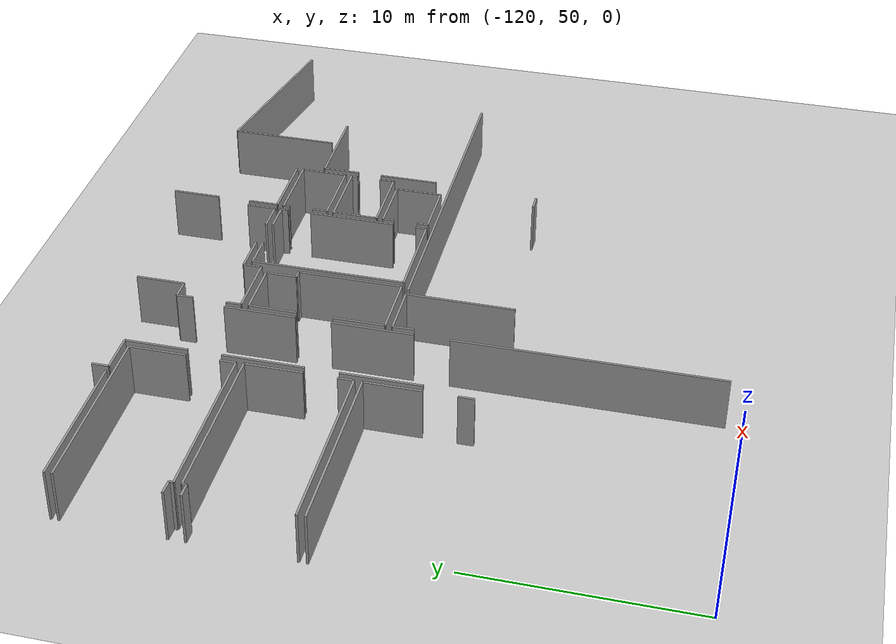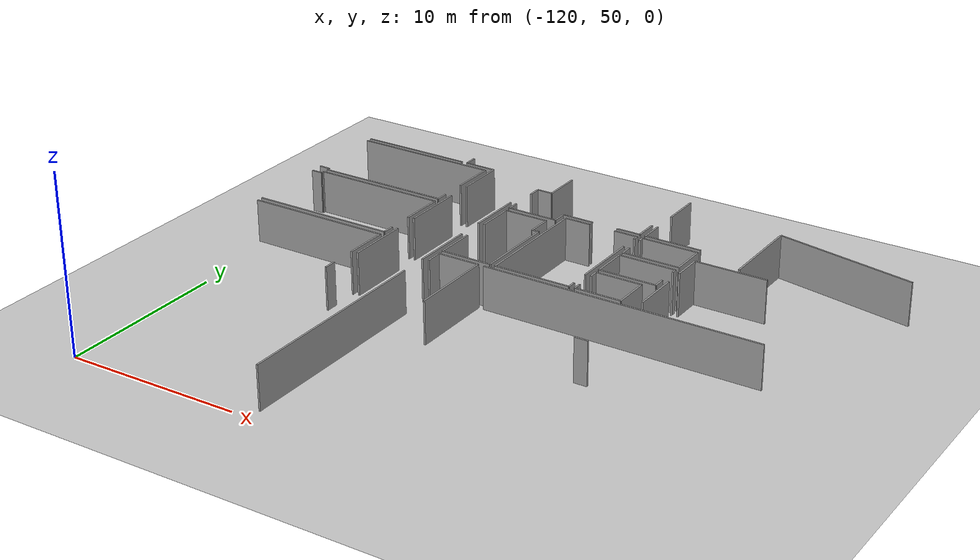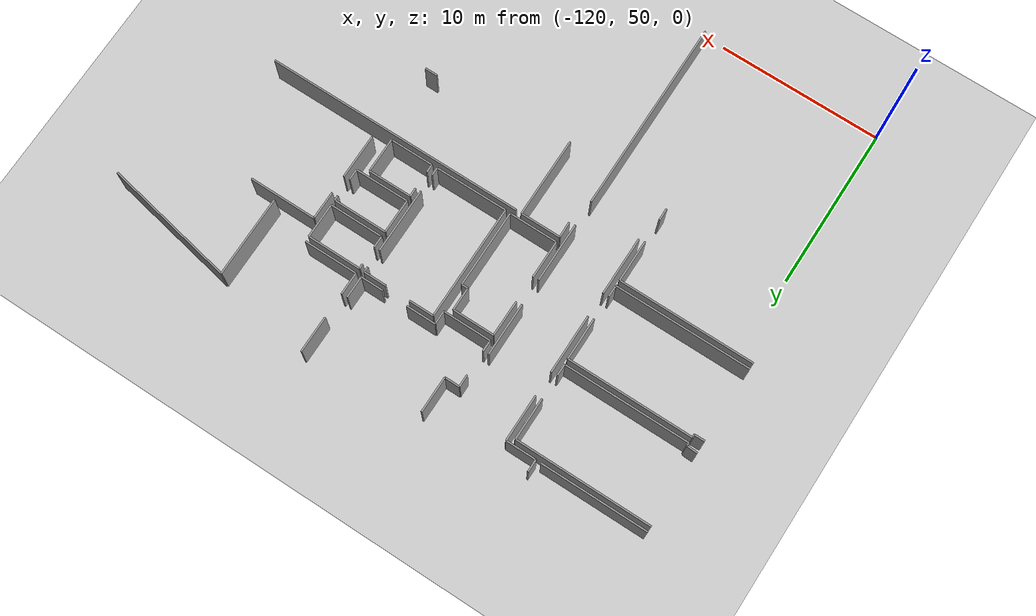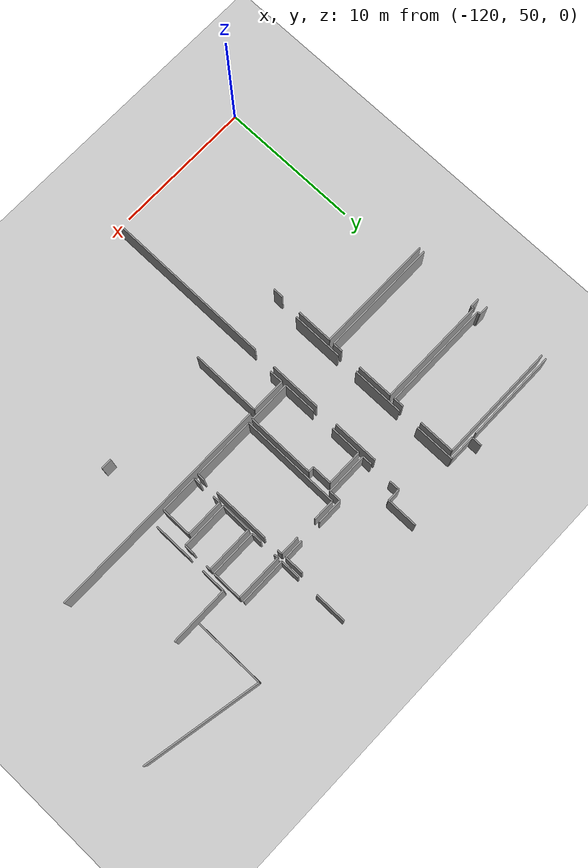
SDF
<sdf version="1.6">
 <world name="default">
  <model name="ground_plane">
   <static>1</static>
   <link name="link">
    <collision name="collision">
     <geometry><plane><normal>0 0 1</normal><size>100 100</size></plane></geometry>
     <surface><friction><ode><mu>100</mu><mu2>50</mu2></ode></friction></surface>
    </collision>
    <visual name="visual">
     <cast_shadows>0</cast_shadows>
     <geometry><plane><normal>0 0 1</normal><size>100 100</size></plane></geometry>
     <material>
      <script><uri>file://media/materials/scripts/gazebo.material</uri><name>Gazebo/Grey</name></script>
     </material>
    </visual>
   </link>
  </model>
  <model name="0510045922_A-40">
   <static>1</static>
   <link name="Wall_280">
    <collision name="Wall_280_Collision">
     <geometry><box><size>6.51966702675 0.1 2.5</size></box></geometry>
     <pose>3.25983351338 0 1.25 0 0 0</pose>
    </collision>
    <visual name="Wall_280_Visual">
     <pose>3.25983351338 0 1.25 0 0 0</pose>
     <geometry><box><size>6.51966702675 0.1 2.5</size></box></geometry>
     <material>
      <script><uri>file://media/materials/scripts/gazebo.material</uri><name>Gazebo/Grey</name></script>
      <ambient>1 1 1 1</ambient>
     </material>
    </visual>
    <pose>19.7860329161 -25.0058842219 0 0 0 3.14159265359</pose>
   </link>
   <link name="Wall_283">
    <collision name="Wall_283_Collision">
     <geometry><box><size>8.3311940014 0.1 2.5</size></box></geometry>
     <pose>4.1655970007 0 1.25 0 0 0</pose>
    </collision>
    <visual name="Wall_283_Visual">
     <pose>4.1655970007 0 1.25 0 0 0</pose>
     <geometry><box><size>8.3311940014 0.1 2.5</size></box></geometry>
     <material>
      <script><uri>file://media/materials/scripts/gazebo.material</uri><name>Gazebo/Grey</name></script>
      <ambient>1 1 1 1</ambient>
     </material>
    </visual>
    <pose>13.2633157527 -25.3408908941 0 0 0 0.0</pose>
   </link>
   <link name="Wall_284">
    <collision name="Wall_284_Collision">
     <geometry><box><size>2.56186058334 0.1 2.5</size></box></geometry>
     <pose>1.28093029167 0 1.25 0 0 0</pose>
    </collision>
    <visual name="Wall_284_Visual">
     <pose>1.28093029167 0 1.25 0 0 0</pose>
     <geometry><box><size>2.56186058334 0.1 2.5</size></box></geometry>
     <material>
      <script><uri>file://media/materials/scripts/gazebo.material</uri><name>Gazebo/Grey</name></script>
      <ambient>1 1 1 1</ambient>
     </material>
    </visual>
    <pose>21.5945097541 -25.3408908941 0 0 0 -1.57079632679</pose>
   </link>
   <link name="Wall_285">
    <collision name="Wall_285_Collision">
     <geometry><box><size>0.711190188727 0.1 2.5</size></box></geometry>
     <pose>0.355595094364 0 1.25 0 0 0</pose>
    </collision>
    <visual name="Wall_285_Visual">
     <pose>0.355595094364 0 1.25 0 0 0</pose>
     <geometry><box><size>0.711190188727 0.1 2.5</size></box></geometry>
     <material>
      <script><uri>file://media/materials/scripts/gazebo.material</uri><name>Gazebo/Grey</name></script>
      <ambient>1 1 1 1</ambient>
     </material>
    </visual>
    <pose>21.5945097541 -29.4026561606 0 0 0 -1.57079632679</pose>
   </link>
   <link name="Wall_286">
    <collision name="Wall_286_Collision">
     <geometry><box><size>7.67287284743 0.1 2.5</size></box></geometry>
     <pose>3.83643642371 0 1.25 0 0 0</pose>
    </collision>
    <visual name="Wall_286_Visual">
     <pose>3.83643642371 0 1.25 0 0 0</pose>
     <geometry><box><size>7.67287284743 0.1 2.5</size></box></geometry>
     <material>
      <script><uri>file://media/materials/scripts/gazebo.material</uri><name>Gazebo/Grey</name></script>
      <ambient>1 1 1 1</ambient>
     </material>
    </visual>
    <pose>21.5945097541 -30.1138463494 0 0 0 3.14159265359</pose>
   </link>
   <link name="Wall_287">
    <collision name="Wall_287_Collision">
     <geometry><box><size>0.186566689966 0.1 2.5</size></box></geometry>
     <pose>0.0932833449832 0 1.25 0 0 0</pose>
    </collision>
    <visual name="Wall_287_Visual">
     <pose>0.0932833449832 0 1.25 0 0 0</pose>
     <geometry><box><size>0.186566689966 0.1 2.5</size></box></geometry>
     <material>
      <script><uri>file://media/materials/scripts/gazebo.material</uri><name>Gazebo/Grey</name></script>
      <ambient>1 1 1 1</ambient>
     </material>
    </visual>
    <pose>13.9216369067 -30.1138463494 0 0 0 1.57079632679</pose>
   </link>
   <link name="Wall_288">
    <collision name="Wall_288_Collision">
     <geometry><box><size>0.658754586046 0.1 2.5</size></box></geometry>
     <pose>0.329377293023 0 1.25 0 0 0</pose>
    </collision>
    <visual name="Wall_288_Visual">
     <pose>0.329377293023 0 1.25 0 0 0</pose>
     <geometry><box><size>0.658754586046 0.1 2.5</size></box></geometry>
     <material>
      <script><uri>file://media/materials/scripts/gazebo.material</uri><name>Gazebo/Grey</name></script>
      <ambient>1 1 1 1</ambient>
     </material>
    </visual>
    <pose>13.9216369067 -29.9272796594 0 0 0 3.10531514012</pose>
   </link>
   <link name="Wall_289">
    <collision name="Wall_289_Collision">
     <geometry><box><size>0.640782868399 0.1 2.5</size></box></geometry>
     <pose>0.3203914342 0 1.25 0 0 0</pose>
    </collision>
    <visual name="Wall_289_Visual">
     <pose>0.3203914342 0 1.25 0 0 0</pose>
     <geometry><box><size>0.640782868399 0.1 2.5</size></box></geometry>
     <material>
      <script><uri>file://media/materials/scripts/gazebo.material</uri><name>Gazebo/Grey</name></script>
      <ambient>1 1 1 1</ambient>
     </material>
    </visual>
    <pose>13.2663658893 -30.647874436 0 0 0 0.0</pose>
   </link>
   <link name="Wall_290">
    <collision name="Wall_290_Collision">
     <geometry><box><size>0.00635445129313 0.1 2.5</size></box></geometry>
     <pose>0.00317722564656 0 1.25 0 0 0</pose>
    </collision>
    <visual name="Wall_290_Visual">
     <pose>0.00317722564656 0 1.25 0 0 0</pose>
     <geometry><box><size>0.00635445129313 0.1 2.5</size></box></geometry>
     <material>
      <script><uri>file://media/materials/scripts/gazebo.material</uri><name>Gazebo/Grey</name></script>
      <ambient>1 1 1 1</ambient>
     </material>
    </visual>
    <pose>13.9071487577 -30.647874436 0 0 0 0.0</pose>
   </link>
   <link name="Wall_291">
    <collision name="Wall_291_Collision">
     <geometry><box><size>0.188345936328 0.1 2.5</size></box></geometry>
     <pose>0.0941729681642 0 1.25 0 0 0</pose>
    </collision>
    <visual name="Wall_291_Visual">
     <pose>0.0941729681642 0 1.25 0 0 0</pose>
     <geometry><box><size>0.188345936328 0.1 2.5</size></box></geometry>
     <material>
      <script><uri>file://media/materials/scripts/gazebo.material</uri><name>Gazebo/Grey</name></script>
      <ambient>1 1 1 1</ambient>
     </material>
    </visual>
    <pose>13.913503209 -30.647874436 0 0 0 1.57079632679</pose>
   </link>
   <link name="Wall_292">
    <collision name="Wall_292_Collision">
     <geometry><box><size>7.70312003558 0.1 2.5</size></box></geometry>
     <pose>3.85156001779 0 1.25 0 0 0</pose>
    </collision>
    <visual name="Wall_292_Visual">
     <pose>3.85156001779 0 1.25 0 0 0</pose>
     <geometry><box><size>7.70312003558 0.1 2.5</size></box></geometry>
     <material>
      <script><uri>file://media/materials/scripts/gazebo.material</uri><name>Gazebo/Grey</name></script>
      <ambient>1 1 1 1</ambient>
     </material>
    </visual>
    <pose>13.913503209 -30.4595284997 0 0 0 0.0</pose>
   </link>
   <link name="Wall_293">
    <collision name="Wall_293_Collision">
     <geometry><box><size>2.58473660799 0.1 2.5</size></box></geometry>
     <pose>1.292368304 0 1.25 0 0 0</pose>
    </collision>
    <visual name="Wall_293_Visual">
     <pose>1.292368304 0 1.25 0 0 0</pose>
     <geometry><box><size>2.58473660799 0.1 2.5</size></box></geometry>
     <material>
      <script><uri>file://media/materials/scripts/gazebo.material</uri><name>Gazebo/Grey</name></script>
      <ambient>1 1 1 1</ambient>
     </material>
    </visual>
    <pose>21.6166232446 -30.4595284997 0 0 0 -1.57079632679</pose>
   </link>
   <link name="Wall_294">
    <collision name="Wall_294_Collision">
     <geometry><box><size>0.704073203279 0.1 2.5</size></box></geometry>
     <pose>0.352036601639 0 1.25 0 0 0</pose>
    </collision>
    <visual name="Wall_294_Visual">
     <pose>0.352036601639 0 1.25 0 0 0</pose>
     <geometry><box><size>0.704073203279 0.1 2.5</size></box></geometry>
     <material>
      <script><uri>file://media/materials/scripts/gazebo.material</uri><name>Gazebo/Grey</name></script>
      <ambient>1 1 1 1</ambient>
     </material>
    </visual>
    <pose>21.6166232446 -34.5370528055 0 0 0 -1.57079632679</pose>
   </link>
   <link name="Wall_295">
    <collision name="Wall_295_Collision">
     <geometry><box><size>8.34212505552 0.1 2.5</size></box></geometry>
     <pose>4.17106252776 0 1.25 0 0 0</pose>
    </collision>
    <visual name="Wall_295_Visual">
     <pose>4.17106252776 0 1.25 0 0 0</pose>
     <geometry><box><size>8.34212505552 0.1 2.5</size></box></geometry>
     <material>
      <script><uri>file://media/materials/scripts/gazebo.material</uri><name>Gazebo/Grey</name></script>
      <ambient>1 1 1 1</ambient>
     </material>
    </visual>
    <pose>21.6166232446 -35.2411260088 0 0 0 -3.14101373836</pose>
   </link>
   <link name="Wall_296">
    <collision name="Wall_296_Collision">
     <geometry><box><size>8.33678591854 0.1 2.5</size></box></geometry>
     <pose>4.16839295927 0 1.25 0 0 0</pose>
    </collision>
    <visual name="Wall_296_Visual">
     <pose>4.16839295927 0 1.25 0 0 0</pose>
     <geometry><box><size>8.33678591854 0.1 2.5</size></box></geometry>
     <material>
      <script><uri>file://media/materials/scripts/gazebo.material</uri><name>Gazebo/Grey</name></script>
      <ambient>1 1 1 1</ambient>
     </material>
    </visual>
    <pose>13.2724661625 -35.6056173349 0 0 0 0.0</pose>
   </link>
   <link name="Wall_297">
    <collision name="Wall_297_Collision">
     <geometry><box><size>2.58016140306 0.1 2.5</size></box></geometry>
     <pose>1.29008070153 0 1.25 0 0 0</pose>
    </collision>
    <visual name="Wall_297_Visual">
     <pose>1.29008070153 0 1.25 0 0 0</pose>
     <geometry><box><size>2.58016140306 0.1 2.5</size></box></geometry>
     <material>
      <script><uri>file://media/materials/scripts/gazebo.material</uri><name>Gazebo/Grey</name></script>
      <ambient>1 1 1 1</ambient>
     </material>
    </visual>
    <pose>21.6092520811 -35.6056173349 0 0 0 -1.57079632679</pose>
   </link>
   <link name="Wall_298">
    <collision name="Wall_298_Collision">
     <geometry><box><size>0.722119844951 0.1 2.5</size></box></geometry>
     <pose>0.361059922476 0 1.25 0 0 0</pose>
    </collision>
    <visual name="Wall_298_Visual">
     <pose>0.361059922476 0 1.25 0 0 0</pose>
     <geometry><box><size>0.722119844951 0.1 2.5</size></box></geometry>
     <material>
      <script><uri>file://media/materials/scripts/gazebo.material</uri><name>Gazebo/Grey</name></script>
      <ambient>1 1 1 1</ambient>
     </material>
    </visual>
    <pose>21.6092520811 -39.6643324649 0 0 0 -1.57079632679</pose>
   </link>
   <link name="Wall_342">
    <collision name="Wall_342_Collision">
     <geometry><box><size>1.38196606723 0.1 2.5</size></box></geometry>
     <pose>0.690983033615 0 1.25 0 0 0</pose>
    </collision>
    <visual name="Wall_342_Visual">
     <pose>0.690983033615 0 1.25 0 0 0</pose>
     <geometry><box><size>1.38196606723 0.1 2.5</size></box></geometry>
     <material>
      <script><uri>file://media/materials/scripts/gazebo.material</uri><name>Gazebo/Grey</name></script>
      <ambient>1 1 1 1</ambient>
     </material>
    </visual>
    <pose>33.628315435 -28.2197115079 0 0 0 1.57079632679</pose>
   </link>
   <link name="Wall_343">
    <collision name="Wall_343_Collision">
     <geometry><box><size>2.22659973311 0.1 2.5</size></box></geometry>
     <pose>1.11329986656 0 1.25 0 0 0</pose>
    </collision>
    <visual name="Wall_343_Visual">
     <pose>1.11329986656 0 1.25 0 0 0</pose>
     <geometry><box><size>2.22659973311 0.1 2.5</size></box></geometry>
     <material>
      <script><uri>file://media/materials/scripts/gazebo.material</uri><name>Gazebo/Grey</name></script>
      <ambient>1 1 1 1</ambient>
     </material>
    </visual>
    <pose>33.628315435 -25.3149647328 0 0 0 1.57079632679</pose>
   </link>
   <link name="Wall_346">
    <collision name="Wall_346_Collision">
     <geometry><box><size>3.29720122376 0.1 2.5</size></box></geometry>
     <pose>1.64860061188 0 1.25 0 0 0</pose>
    </collision>
    <visual name="Wall_346_Visual">
     <pose>1.64860061188 0 1.25 0 0 0</pose>
     <geometry><box><size>3.29720122376 0.1 2.5</size></box></geometry>
     <material>
      <script><uri>file://media/materials/scripts/gazebo.material</uri><name>Gazebo/Grey</name></script>
      <ambient>1 1 1 1</ambient>
     </material>
    </visual>
    <pose>36.9255131219 -28.2148821249 0 0 0 -3.14012796145</pose>
   </link>
   <link name="Wall_347">
    <collision name="Wall_347_Collision">
     <geometry><box><size>0.91783694478 0.1 2.5</size></box></geometry>
     <pose>0.45891847239 0 1.25 0 0 0</pose>
    </collision>
    <visual name="Wall_347_Visual">
     <pose>0.45891847239 0 1.25 0 0 0</pose>
     <geometry><box><size>0.91783694478 0.1 2.5</size></box></geometry>
     <material>
      <script><uri>file://media/materials/scripts/gazebo.material</uri><name>Gazebo/Grey</name></script>
      <ambient>1 1 1 1</ambient>
     </material>
    </visual>
    <pose>25.5779881807 -26.072923683 0 0 0 0.0</pose>
   </link>
   <link name="Wall_348">
    <collision name="Wall_348_Collision">
     <geometry><box><size>2.21389083053 0.1 2.5</size></box></geometry>
     <pose>1.10694541526 0 1.25 0 0 0</pose>
    </collision>
    <visual name="Wall_348_Visual">
     <pose>1.10694541526 0 1.25 0 0 0</pose>
     <geometry><box><size>2.21389083053 0.1 2.5</size></box></geometry>
     <material>
      <script><uri>file://media/materials/scripts/gazebo.material</uri><name>Gazebo/Grey</name></script>
      <ambient>1 1 1 1</ambient>
     </material>
    </visual>
    <pose>26.4958251255 -26.072923683 0 0 0 1.57079632679</pose>
   </link>
   <link name="Wall_353">
    <collision name="Wall_353_Collision">
     <geometry><box><size>1.34383935947 0.1 2.5</size></box></geometry>
     <pose>0.671919679736 0 1.25 0 0 0</pose>
    </collision>
    <visual name="Wall_353_Visual">
     <pose>0.671919679736 0 1.25 0 0 0</pose>
     <geometry><box><size>1.34383935947 0.1 2.5</size></box></geometry>
     <material>
      <script><uri>file://media/materials/scripts/gazebo.material</uri><name>Gazebo/Grey</name></script>
      <ambient>1 1 1 1</ambient>
     </material>
    </visual>
    <pose>33.2800915041 -26.8651966703 0 0 0 -1.57079632679</pose>
   </link>
   <link name="Wall_354">
    <collision name="Wall_354_Collision">
     <geometry><box><size>1.38094935502 0.1 2.5</size></box></geometry>
     <pose>0.690474677512 0 1.25 0 0 0</pose>
    </collision>
    <visual name="Wall_354_Visual">
     <pose>0.690474677512 0 1.25 0 0 0</pose>
     <geometry><box><size>1.38094935502 0.1 2.5</size></box></geometry>
     <material>
      <script><uri>file://media/materials/scripts/gazebo.material</uri><name>Gazebo/Grey</name></script>
      <ambient>1 1 1 1</ambient>
     </material>
    </visual>
    <pose>33.2800915041 -28.2090360297 0 0 0 3.14159265359</pose>
   </link>
   <link name="Wall_355">
    <collision name="Wall_355_Collision">
     <geometry><box><size>1.82474423334 0.1 2.5</size></box></geometry>
     <pose>0.912372116668 0 1.25 0 0 0</pose>
    </collision>
    <visual name="Wall_355_Visual">
     <pose>0.912372116668 0 1.25 0 0 0</pose>
     <geometry><box><size>1.82474423334 0.1 2.5</size></box></geometry>
     <material>
      <script><uri>file://media/materials/scripts/gazebo.material</uri><name>Gazebo/Grey</name></script>
      <ambient>1 1 1 1</ambient>
     </material>
    </visual>
    <pose>30.3585689776 -28.2090360297 0 0 0 3.14159265359</pose>
   </link>
   <link name="Wall_356">
    <collision name="Wall_356_Collision">
     <geometry><box><size>0.830399694986 0.1 2.5</size></box></geometry>
     <pose>0.415199847493 0 1.25 0 0 0</pose>
    </collision>
    <visual name="Wall_356_Visual">
     <pose>0.415199847493 0 1.25 0 0 0</pose>
     <geometry><box><size>0.830399694986 0.1 2.5</size></box></geometry>
     <material>
      <script><uri>file://media/materials/scripts/gazebo.material</uri><name>Gazebo/Grey</name></script>
      <ambient>1 1 1 1</ambient>
     </material>
    </visual>
    <pose>28.5338247442 -28.2090360297 0 0 0 -1.57079632679</pose>
   </link>
   <link name="Wall_357">
    <collision name="Wall_357_Collision">
     <geometry><box><size>2.94439855119 0.1 2.5</size></box></geometry>
     <pose>1.47219927559 0 1.25 0 0 0</pose>
    </collision>
    <visual name="Wall_357_Visual">
     <pose>1.47219927559 0 1.25 0 0 0</pose>
     <geometry><box><size>2.94439855119 0.1 2.5</size></box></geometry>
     <material>
      <script><uri>file://media/materials/scripts/gazebo.material</uri><name>Gazebo/Grey</name></script>
      <ambient>1 1 1 1</ambient>
     </material>
    </visual>
    <pose>28.5338247442 -29.0394357247 0 0 0 3.14159265359</pose>
   </link>
   <link name="Wall_358">
    <collision name="Wall_358_Collision">
     <geometry><box><size>0.692126834848 0.1 2.5</size></box></geometry>
     <pose>0.346063417424 0 1.25 0 0 0</pose>
    </collision>
    <visual name="Wall_358_Visual">
     <pose>0.346063417424 0 1.25 0 0 0</pose>
     <geometry><box><size>0.692126834848 0.1 2.5</size></box></geometry>
     <material>
      <script><uri>file://media/materials/scripts/gazebo.material</uri><name>Gazebo/Grey</name></script>
      <ambient>1 1 1 1</ambient>
     </material>
    </visual>
    <pose>25.589426193 -29.0394357247 0 0 0 1.57079632679</pose>
   </link>
   <link name="Wall_359">
    <collision name="Wall_359_Collision">
     <geometry><box><size>0.740763154305 0.1 2.5</size></box></geometry>
     <pose>0.370381577152 0 1.25 0 0 0</pose>
    </collision>
    <visual name="Wall_359_Visual">
     <pose>0.370381577152 0 1.25 0 0 0</pose>
     <geometry><box><size>0.740763154305 0.1 2.5</size></box></geometry>
     <material>
      <script><uri>file://media/materials/scripts/gazebo.material</uri><name>Gazebo/Grey</name></script>
      <ambient>1 1 1 1</ambient>
     </material>
    </visual>
    <pose>25.589426193 -26.8135985258 0 0 0 1.58623778986</pose>
   </link>
   <link name="Wall_360">
    <collision name="Wall_360_Collision">
     <geometry><box><size>2.56084387113 0.1 2.5</size></box></geometry>
     <pose>1.28042193557 0 1.25 0 0 0</pose>
    </collision>
    <visual name="Wall_360_Visual">
     <pose>1.28042193557 0 1.25 0 0 0</pose>
     <geometry><box><size>2.56084387113 0.1 2.5</size></box></geometry>
     <material>
      <script><uri>file://media/materials/scripts/gazebo.material</uri><name>Gazebo/Grey</name></script>
      <ambient>1 1 1 1</ambient>
     </material>
    </visual>
    <pose>25.5993391371 -29.3884221897 0 0 0 0.0</pose>
   </link>
   <link name="Wall_361">
    <collision name="Wall_361_Collision">
     <geometry><box><size>1.40865476266 0.1 2.5</size></box></geometry>
     <pose>0.704327381331 0 1.25 0 0 0</pose>
    </collision>
    <visual name="Wall_361_Visual">
     <pose>0.704327381331 0 1.25 0 0 0</pose>
     <geometry><box><size>1.40865476266 0.1 2.5</size></box></geometry>
     <material>
      <script><uri>file://media/materials/scripts/gazebo.material</uri><name>Gazebo/Grey</name></script>
      <ambient>1 1 1 1</ambient>
     </material>
    </visual>
    <pose>28.1601830082 -29.3884221897 0 0 0 -1.57079632679</pose>
   </link>
   <link name="Wall_362">
    <collision name="Wall_362_Collision">
     <geometry><box><size>0.395246870433 0.1 2.5</size></box></geometry>
     <pose>0.197623435216 0 1.25 0 0 0</pose>
    </collision>
    <visual name="Wall_362_Visual">
     <pose>0.197623435216 0 1.25 0 0 0</pose>
     <geometry><box><size>0.395246870433 0.1 2.5</size></box></geometry>
     <material>
      <script><uri>file://media/materials/scripts/gazebo.material</uri><name>Gazebo/Grey</name></script>
      <ambient>1 1 1 1</ambient>
     </material>
    </visual>
    <pose>28.1601830082 -30.7970769524 0 0 0 0.0</pose>
   </link>
   <link name="Wall_363">
    <collision name="Wall_363_Collision">
     <geometry><box><size>4.76227997712 0.1 2.5</size></box></geometry>
     <pose>2.38113998856 0 1.25 0 0 0</pose>
    </collision>
    <visual name="Wall_363_Visual">
     <pose>2.38113998856 0 1.25 0 0 0</pose>
     <geometry><box><size>4.76227997712 0.1 2.5</size></box></geometry>
     <material>
      <script><uri>file://media/materials/scripts/gazebo.material</uri><name>Gazebo/Grey</name></script>
      <ambient>1 1 1 1</ambient>
     </material>
    </visual>
    <pose>28.5554298786 -30.7970769524 0 0 0 -1.57079632679</pose>
   </link>
   <link name="Wall_364">
    <collision name="Wall_364_Collision">
     <geometry><box><size>2.96549532948 0.1 2.5</size></box></geometry>
     <pose>1.48274766474 0 1.25 0 0 0</pose>
    </collision>
    <visual name="Wall_364_Visual">
     <pose>1.48274766474 0 1.25 0 0 0</pose>
     <geometry><box><size>2.96549532948 0.1 2.5</size></box></geometry>
     <material>
      <script><uri>file://media/materials/scripts/gazebo.material</uri><name>Gazebo/Grey</name></script>
      <ambient>1 1 1 1</ambient>
     </material>
    </visual>
    <pose>28.5554298786 -35.5593569295 0 0 0 3.14159265359</pose>
   </link>
   <link name="Wall_365">
    <collision name="Wall_365_Collision">
     <geometry><box><size>2.33742136367 0.1 2.5</size></box></geometry>
     <pose>1.16871068183 0 1.25 0 0 0</pose>
    </collision>
    <visual name="Wall_365_Visual">
     <pose>1.16871068183 0 1.25 0 0 0</pose>
     <geometry><box><size>2.33742136367 0.1 2.5</size></box></geometry>
     <material>
      <script><uri>file://media/materials/scripts/gazebo.material</uri><name>Gazebo/Grey</name></script>
      <ambient>1 1 1 1</ambient>
     </material>
    </visual>
    <pose>25.5899345492 -35.5593569295 0 0 0 1.57079632679</pose>
   </link>
   <link name="Wall_366">
    <collision name="Wall_366_Collision">
     <geometry><box><size>2.20247289715 0.1 2.5</size></box></geometry>
     <pose>1.10123644857 0 1.25 0 0 0</pose>
    </collision>
    <visual name="Wall_366_Visual">
     <pose>1.10123644857 0 1.25 0 0 0</pose>
     <geometry><box><size>2.20247289715 0.1 2.5</size></box></geometry>
     <material>
      <script><uri>file://media/materials/scripts/gazebo.material</uri><name>Gazebo/Grey</name></script>
      <ambient>1 1 1 1</ambient>
     </material>
    </visual>
    <pose>25.5899345492 -31.5908750079 0 0 0 1.56652630081</pose>
   </link>
   <link name="Wall_367">
    <collision name="Wall_367_Collision">
     <geometry><box><size>3.3154985067 0.1 2.5</size></box></geometry>
     <pose>1.65774925335 0 1.25 0 0 0</pose>
    </collision>
    <visual name="Wall_367_Visual">
     <pose>1.65774925335 0 1.25 0 0 0</pose>
     <geometry><box><size>3.3154985067 0.1 2.5</size></box></geometry>
     <material>
      <script><uri>file://media/materials/scripts/gazebo.material</uri><name>Gazebo/Grey</name></script>
      <ambient>1 1 1 1</ambient>
     </material>
    </visual>
    <pose>33.6145898202 -28.5369257165 0 0 0 0.0</pose>
   </link>
   <link name="Wall_368">
    <collision name="Wall_368_Collision">
     <geometry><box><size>2.13077460761 0.1 2.5</size></box></geometry>
     <pose>1.06538730381 0 1.25 0 0 0</pose>
    </collision>
    <visual name="Wall_368_Visual">
     <pose>1.06538730381 0 1.25 0 0 0</pose>
     <geometry><box><size>2.13077460761 0.1 2.5</size></box></geometry>
     <material>
      <script><uri>file://media/materials/scripts/gazebo.material</uri><name>Gazebo/Grey</name></script>
      <ambient>1 1 1 1</ambient>
     </material>
    </visual>
    <pose>36.9300883269 -28.5369257165 0 0 0 -1.57079632679</pose>
   </link>
   <link name="Wall_369">
    <collision name="Wall_369_Collision">
     <geometry><box><size>3.292368304 0.1 2.5</size></box></geometry>
     <pose>1.646184152 0 1.25 0 0 0</pose>
    </collision>
    <visual name="Wall_369_Visual">
     <pose>1.646184152 0 1.25 0 0 0</pose>
     <geometry><box><size>3.292368304 0.1 2.5</size></box></geometry>
     <material>
      <script><uri>file://media/materials/scripts/gazebo.material</uri><name>Gazebo/Grey</name></script>
      <ambient>1 1 1 1</ambient>
     </material>
    </visual>
    <pose>36.9300883269 -30.6677003241 0 0 0 3.14159265359</pose>
   </link>
   <link name="Wall_370">
    <collision name="Wall_370_Collision">
     <geometry><box><size>0.713986147296 0.1 2.5</size></box></geometry>
     <pose>0.356993073648 0 1.25 0 0 0</pose>
    </collision>
    <visual name="Wall_370_Visual">
     <pose>0.356993073648 0 1.25 0 0 0</pose>
     <geometry><box><size>0.713986147296 0.1 2.5</size></box></geometry>
     <material>
      <script><uri>file://media/materials/scripts/gazebo.material</uri><name>Gazebo/Grey</name></script>
      <ambient>1 1 1 1</ambient>
     </material>
    </visual>
    <pose>33.6377200229 -30.6677003241 0 0 0 1.57079632679</pose>
   </link>
   <link name="Wall_371">
    <collision name="Wall_371_Collision">
     <geometry><box><size>0.296005810877 0.1 2.5</size></box></geometry>
     <pose>0.148002905438 0 1.25 0 0 0</pose>
    </collision>
    <visual name="Wall_371_Visual">
     <pose>0.148002905438 0 1.25 0 0 0</pose>
     <geometry><box><size>0.296005810877 0.1 2.5</size></box></geometry>
     <material>
      <script><uri>file://media/materials/scripts/gazebo.material</uri><name>Gazebo/Grey</name></script>
      <ambient>1 1 1 1</ambient>
     </material>
    </visual>
    <pose>33.6377200229 -28.8320264345 0 0 0 1.64901711062</pose>
   </link>
   <link name="Wall_372">
    <collision name="Wall_372_Collision">
     <geometry><box><size>2.67090296753 0.1 2.5</size></box></geometry>
     <pose>1.33545148376 0 1.25 0 0 0</pose>
    </collision>
    <visual name="Wall_372_Visual">
     <pose>1.33545148376 0 1.25 0 0 0</pose>
     <geometry><box><size>2.67090296753 0.1 2.5</size></box></geometry>
     <material>
      <script><uri>file://media/materials/scripts/gazebo.material</uri><name>Gazebo/Grey</name></script>
      <ambient>1 1 1 1</ambient>
     </material>
    </visual>
    <pose>33.6247569422 -33.4107898583 0 0 0 0.0</pose>
   </link>
   <link name="Wall_373">
    <collision name="Wall_373_Collision">
     <geometry><box><size>2.14729618097 0.1 2.5</size></box></geometry>
     <pose>1.07364809049 0 1.25 0 0 0</pose>
    </collision>
    <visual name="Wall_373_Visual">
     <pose>1.07364809049 0 1.25 0 0 0</pose>
     <geometry><box><size>2.14729618097 0.1 2.5</size></box></geometry>
     <material>
      <script><uri>file://media/materials/scripts/gazebo.material</uri><name>Gazebo/Grey</name></script>
      <ambient>1 1 1 1</ambient>
     </material>
    </visual>
    <pose>36.2956599098 -33.4107898583 0 0 0 -1.57079632679</pose>
   </link>
   <link name="Wall_374">
    <collision name="Wall_374_Collision">
     <geometry><box><size>2.65666899663 0.1 2.5</size></box></geometry>
     <pose>1.32833449832 0 1.25 0 0 0</pose>
    </collision>
    <visual name="Wall_374_Visual">
     <pose>1.32833449832 0 1.25 0 0 0</pose>
     <geometry><box><size>2.65666899663 0.1 2.5</size></box></geometry>
     <material>
      <script><uri>file://media/materials/scripts/gazebo.material</uri><name>Gazebo/Grey</name></script>
      <ambient>1 1 1 1</ambient>
     </material>
    </visual>
    <pose>36.2956599098 -35.5580860393 0 0 0 3.14159265359</pose>
   </link>
   <link name="Wall_375">
    <collision name="Wall_375_Collision">
     <geometry><box><size>0.502510008261 0.1 2.5</size></box></geometry>
     <pose>0.25125500413 0 1.25 0 0 0</pose>
    </collision>
    <visual name="Wall_375_Visual">
     <pose>0.25125500413 0 1.25 0 0 0</pose>
     <geometry><box><size>0.502510008261 0.1 2.5</size></box></geometry>
     <material>
      <script><uri>file://media/materials/scripts/gazebo.material</uri><name>Gazebo/Grey</name></script>
      <ambient>1 1 1 1</ambient>
     </material>
    </visual>
    <pose>33.6389909131 -35.5580860393 0 0 0 1.57079632679</pose>
   </link>
   <link name="Wall_376">
    <collision name="Wall_376_Collision">
     <geometry><box><size>0.531168701423 0.1 2.5</size></box></geometry>
     <pose>0.265584350711 0 1.25 0 0 0</pose>
    </collision>
    <visual name="Wall_376_Visual">
     <pose>0.265584350711 0 1.25 0 0 0</pose>
     <geometry><box><size>0.531168701423 0.1 2.5</size></box></geometry>
     <material>
      <script><uri>file://media/materials/scripts/gazebo.material</uri><name>Gazebo/Grey</name></script>
      <ambient>1 1 1 1</ambient>
     </material>
    </visual>
    <pose>33.6389909131 -33.9417678083 0 0 0 1.59759699292</pose>
   </link>
   <link name="Wall_377">
    <collision name="Wall_377_Collision">
     <geometry><box><size>7.05522018174 0.1 2.5</size></box></geometry>
     <pose>3.52761009087 0 1.25 0 0 0</pose>
    </collision>
    <visual name="Wall_377_Visual">
     <pose>3.52761009087 0 1.25 0 0 0</pose>
     <geometry><box><size>7.05522018174 0.1 2.5</size></box></geometry>
     <material>
      <script><uri>file://media/materials/scripts/gazebo.material</uri><name>Gazebo/Grey</name></script>
      <ambient>1 1 1 1</ambient>
     </material>
    </visual>
    <pose>28.8711190189 -35.5807078859 0 0 0 1.57079632679</pose>
   </link>
   <link name="Wall_378">
    <collision name="Wall_378_Collision">
     <geometry><box><size>1.52862680308 0.1 2.5</size></box></geometry>
     <pose>0.764313401538 0 1.25 0 0 0</pose>
    </collision>
    <visual name="Wall_378_Visual">
     <pose>0.764313401538 0 1.25 0 0 0</pose>
     <geometry><box><size>1.52862680308 0.1 2.5</size></box></geometry>
     <material>
      <script><uri>file://media/materials/scripts/gazebo.material</uri><name>Gazebo/Grey</name></script>
      <ambient>1 1 1 1</ambient>
     </material>
    </visual>
    <pose>28.8711190189 -28.5254877041 0 0 0 0.0</pose>
   </link>
   <link name="Wall_379">
    <collision name="Wall_379_Collision">
     <geometry><box><size>1.38222024528 0.1 2.5</size></box></geometry>
     <pose>0.691110122641 0 1.25 0 0 0</pose>
    </collision>
    <visual name="Wall_379_Visual">
     <pose>0.691110122641 0 1.25 0 0 0</pose>
     <geometry><box><size>1.38222024528 0.1 2.5</size></box></geometry>
     <material>
      <script><uri>file://media/materials/scripts/gazebo.material</uri><name>Gazebo/Grey</name></script>
      <ambient>1 1 1 1</ambient>
     </material>
    </visual>
    <pose>31.9210014615 -28.5254877041 0 0 0 0.0</pose>
   </link>
   <link name="Wall_380">
    <collision name="Wall_380_Collision">
     <geometry><box><size>0.330939823346 0.1 2.5</size></box></geometry>
     <pose>0.165469911673 0 1.25 0 0 0</pose>
    </collision>
    <visual name="Wall_380_Visual">
     <pose>0.165469911673 0 1.25 0 0 0</pose>
     <geometry><box><size>0.330939823346 0.1 2.5</size></box></geometry>
     <material>
      <script><uri>file://media/materials/scripts/gazebo.material</uri><name>Gazebo/Grey</name></script>
      <ambient>1 1 1 1</ambient>
     </material>
    </visual>
    <pose>33.3032217068 -28.5254877041 0 0 0 -1.57079632679</pose>
   </link>
   <link name="Wall_381">
    <collision name="Wall_381_Collision">
     <geometry><box><size>4.01092965622 0.1 2.5</size></box></geometry>
     <pose>2.00546482811 0 1.25 0 0 0</pose>
    </collision>
    <visual name="Wall_381_Visual">
     <pose>2.00546482811 0 1.25 0 0 0</pose>
     <geometry><box><size>4.01092965622 0.1 2.5</size></box></geometry>
     <material>
      <script><uri>file://media/materials/scripts/gazebo.material</uri><name>Gazebo/Grey</name></script>
      <ambient>1 1 1 1</ambient>
     </material>
    </visual>
    <pose>33.3032217068 -29.9626104086 0 0 0 -1.57079632679</pose>
   </link>
   <link name="Wall_382">
    <collision name="Wall_382_Collision">
     <geometry><box><size>0.49945987164 0.1 2.5</size></box></geometry>
     <pose>0.24972993582 0 1.25 0 0 0</pose>
    </collision>
    <visual name="Wall_382_Visual">
     <pose>0.24972993582 0 1.25 0 0 0</pose>
     <geometry><box><size>0.49945987164 0.1 2.5</size></box></geometry>
     <material>
      <script><uri>file://media/materials/scripts/gazebo.material</uri><name>Gazebo/Grey</name></script>
      <ambient>1 1 1 1</ambient>
     </material>
    </visual>
    <pose>33.3032217068 -35.0670140433 0 0 0 -1.57079632679</pose>
   </link>
   <link name="Wall_383">
    <collision name="Wall_383_Collision">
     <geometry><box><size>4.43212554451 0.1 2.5</size></box></geometry>
     <pose>2.21606277226 0 1.25 0 0 0</pose>
    </collision>
    <visual name="Wall_383_Visual">
     <pose>2.21606277226 0 1.25 0 0 0</pose>
     <geometry><box><size>4.43212554451 0.1 2.5</size></box></geometry>
     <material>
      <script><uri>file://media/materials/scripts/gazebo.material</uri><name>Gazebo/Grey</name></script>
      <ambient>1 1 1 1</ambient>
     </material>
    </visual>
    <pose>33.3032217068 -35.566473915 0 0 0 -3.13838110301</pose>
   </link>
   <link name="Wall_384">
    <collision name="Wall_384_Collision">
     <geometry><box><size>2.45841011629 0.1 2.5</size></box></geometry>
     <pose>1.22920505814 0 1.25 0 0 0</pose>
    </collision>
    <visual name="Wall_384_Visual">
     <pose>1.22920505814 0 1.25 0 0 0</pose>
     <geometry><box><size>2.45841011629 0.1 2.5</size></box></geometry>
     <material>
      <script><uri>file://media/materials/scripts/gazebo.material</uri><name>Gazebo/Grey</name></script>
      <ambient>1 1 1 1</ambient>
     </material>
    </visual>
    <pose>25.5889178369 -35.8905509309 0 0 0 0.0</pose>
   </link>
   <link name="Wall_385">
    <collision name="Wall_385_Collision">
     <geometry><box><size>4.91809112283 0.1 2.5</size></box></geometry>
     <pose>2.45904556142 0 1.25 0 0 0</pose>
    </collision>
    <visual name="Wall_385_Visual">
     <pose>2.45904556142 0 1.25 0 0 0</pose>
     <geometry><box><size>4.91809112283 0.1 2.5</size></box></geometry>
     <material>
      <script><uri>file://media/materials/scripts/gazebo.material</uri><name>Gazebo/Grey</name></script>
      <ambient>1 1 1 1</ambient>
     </material>
    </visual>
    <pose>28.0473279532 -35.8905509309 0 0 0 -1.57079632679</pose>
   </link>
   <link name="Wall_388">
    <collision name="Wall_388_Collision">
     <geometry><box><size>0.967938355267 0.1 2.5</size></box></geometry>
     <pose>0.483969177633 0 1.25 0 0 0</pose>
    </collision>
    <visual name="Wall_388_Visual">
     <pose>0.483969177633 0 1.25 0 0 0</pose>
     <geometry><box><size>0.967938355267 0.1 2.5</size></box></geometry>
     <material>
      <script><uri>file://media/materials/scripts/gazebo.material</uri><name>Gazebo/Grey</name></script>
      <ambient>1 1 1 1</ambient>
     </material>
    </visual>
    <pose>25.6123022177 -36.8582067738 0 0 0 1.59495763414</pose>
   </link>
   <link name="Wall_437">
    <collision name="Wall_437_Collision">
     <geometry><box><size>15.9585689776 0.1 2.5</size></box></geometry>
     <pose>7.97928448878 0 1.25 0 0 0</pose>
    </collision>
    <visual name="Wall_437_Visual">
     <pose>7.97928448878 0 1.25 0 0 0</pose>
     <geometry><box><size>15.9585689776 0.1 2.5</size></box></geometry>
     <material>
      <script><uri>file://media/materials/scripts/gazebo.material</uri><name>Gazebo/Grey</name></script>
      <ambient>1 1 1 1</ambient>
     </material>
    </visual>
    <pose>28.3861472962 -35.9017347652 0 0 0 0.0</pose>
   </link>
   <link name="Wall_442">
    <collision name="Wall_442_Collision">
     <geometry><box><size>0.774480523607 0.1 2.5</size></box></geometry>
     <pose>0.387240261803 0 1.25 0 0 0</pose>
    </collision>
    <visual name="Wall_442_Visual">
     <pose>0.387240261803 0 1.25 0 0 0</pose>
     <geometry><box><size>0.774480523607 0.1 2.5</size></box></geometry>
     <material>
      <script><uri>file://media/materials/scripts/gazebo.material</uri><name>Gazebo/Grey</name></script>
      <ambient>1 1 1 1</ambient>
     </material>
    </visual>
    <pose>37.0820868018 -40.0730507721 0 0 0 3.14159265359</pose>
   </link>
   <link name="Wall_452">
    <collision name="Wall_452_Collision">
     <geometry><box><size>2.74486878058 0.1 2.5</size></box></geometry>
     <pose>1.37243439029 0 1.25 0 0 0</pose>
    </collision>
    <visual name="Wall_452_Visual">
     <pose>1.37243439029 0 1.25 0 0 0</pose>
     <geometry><box><size>2.74486878058 0.1 2.5</size></box></geometry>
     <material>
      <script><uri>file://media/materials/scripts/gazebo.material</uri><name>Gazebo/Grey</name></script>
      <ambient>1 1 1 1</ambient>
     </material>
    </visual>
    <pose>37.2841583529 -35.124458283 0 0 0 1.57079632679</pose>
   </link>
   <link name="Wall_453">
    <collision name="Wall_453_Collision">
     <geometry><box><size>1.73146088835 0.1 2.5</size></box></geometry>
     <pose>0.865730444176 0 1.25 0 0 0</pose>
    </collision>
    <visual name="Wall_453_Visual">
     <pose>0.865730444176 0 1.25 0 0 0</pose>
     <geometry><box><size>1.73146088835 0.1 2.5</size></box></geometry>
     <material>
      <script><uri>file://media/materials/scripts/gazebo.material</uri><name>Gazebo/Grey</name></script>
      <ambient>1 1 1 1</ambient>
     </material>
    </visual>
    <pose>37.2841583529 -31.2665438139 0 0 0 1.57079632679</pose>
   </link>
   <link name="Wall_454">
    <collision name="Wall_454_Collision">
     <geometry><box><size>4.13547690157 0.1 2.5</size></box></geometry>
     <pose>2.06773845078 0 1.25 0 0 0</pose>
    </collision>
    <visual name="Wall_454_Visual">
     <pose>2.06773845078 0 1.25 0 0 0</pose>
     <geometry><box><size>4.13547690157 0.1 2.5</size></box></geometry>
     <material>
      <script><uri>file://media/materials/scripts/gazebo.material</uri><name>Gazebo/Grey</name></script>
      <ambient>1 1 1 1</ambient>
     </material>
    </visual>
    <pose>37.2841583529 -29.5350829256 0 0 0 0.0</pose>
   </link>
   <link name="Wall_464">
    <collision name="Wall_464_Collision">
     <geometry><box><size>4.95952214526 0.1 2.5</size></box></geometry>
     <pose>2.47976107263 0 1.25 0 0 0</pose>
    </collision>
    <visual name="Wall_464_Visual">
     <pose>2.47976107263 0 1.25 0 0 0</pose>
     <geometry><box><size>4.95952214526 0.1 2.5</size></box></geometry>
     <material>
      <script><uri>file://media/materials/scripts/gazebo.material</uri><name>Gazebo/Grey</name></script>
      <ambient>1 1 1 1</ambient>
     </material>
    </visual>
    <pose>39.6680943001 -29.2252398805 0 0 0 1.57079632679</pose>
   </link>
   <link name="Wall_465">
    <collision name="Wall_465_Collision">
     <geometry><box><size>8.21906831695 0.1 2.5</size></box></geometry>
     <pose>4.10953415848 0 1.25 0 0 0</pose>
    </collision>
    <visual name="Wall_465_Visual">
     <pose>4.10953415848 0 1.25 0 0 0</pose>
     <geometry><box><size>8.21906831695 0.1 2.5</size></box></geometry>
     <material>
      <script><uri>file://media/materials/scripts/gazebo.material</uri><name>Gazebo/Grey</name></script>
      <ambient>1 1 1 1</ambient>
     </material>
    </visual>
    <pose>39.6680943001 -24.2657177353 0 0 0 -0.191136468138</pose>
   </link>
   <link name="Wall_475">
    <collision name="Wall_475_Collision">
     <geometry><box><size>3.60780326619 0.1 2.5</size></box></geometry>
     <pose>1.80390163309 0 1.25 0 0 0</pose>
    </collision>
    <visual name="Wall_475_Visual">
     <pose>1.80390163309 0 1.25 0 0 0</pose>
     <geometry><box><size>3.60780326619 0.1 2.5</size></box></geometry>
     <material>
      <script><uri>file://media/materials/scripts/gazebo.material</uri><name>Gazebo/Grey</name></script>
      <ambient>1 1 1 1</ambient>
     </material>
    </visual>
    <pose>21.9617970388 -38.1196924446 0 0 0 1.57079632679</pose>
   </link>
   <link name="Wall_476">
    <collision name="Wall_476_Collision">
     <geometry><box><size>3.63652538603 0.1 2.5</size></box></geometry>
     <pose>1.81826269302 0 1.25 0 0 0</pose>
    </collision>
    <visual name="Wall_476_Visual">
     <pose>1.81826269302 0 1.25 0 0 0</pose>
     <geometry><box><size>3.63652538603 0.1 2.5</size></box></geometry>
     <material>
      <script><uri>file://media/materials/scripts/gazebo.material</uri><name>Gazebo/Grey</name></script>
      <ambient>1 1 1 1</ambient>
     </material>
    </visual>
    <pose>21.9617970388 -32.9985130584 0 0 0 1.57079632679</pose>
   </link>
   <link name="Wall_477">
    <collision name="Wall_477_Collision">
     <geometry><box><size>2.84094808413 0.1 2.5</size></box></geometry>
     <pose>1.42047404207 0 1.25 0 0 0</pose>
    </collision>
    <visual name="Wall_477_Visual">
     <pose>1.42047404207 0 1.25 0 0 0</pose>
     <geometry><box><size>2.84094808413 0.1 2.5</size></box></geometry>
     <material>
      <script><uri>file://media/materials/scripts/gazebo.material</uri><name>Gazebo/Grey</name></script>
      <ambient>1 1 1 1</ambient>
     </material>
    </visual>
    <pose>21.9617970388 -27.8539492915 0 0 0 1.57079632679</pose>
   </link>
   <link name="Wall_478">
    <collision name="Wall_478_Collision">
     <geometry><box><size>1.84482429942 0.1 2.5</size></box></geometry>
     <pose>0.922412149711 0 1.25 0 0 0</pose>
    </collision>
    <visual name="Wall_478_Visual">
     <pose>0.922412149711 0 1.25 0 0 0</pose>
     <geometry><box><size>1.84482429942 0.1 2.5</size></box></geometry>
     <material>
      <script><uri>file://media/materials/scripts/gazebo.material</uri><name>Gazebo/Grey</name></script>
      <ambient>1 1 1 1</ambient>
     </material>
    </visual>
    <pose>21.9617970388 -25.0130012073 0 0 0 3.14159265359</pose>
   </link>
   <link name="Wall_479">
    <collision name="Wall_479_Collision">
     <geometry><box><size>0.759992374658 0.1 2.5</size></box></geometry>
     <pose>0.379996187329 0 1.25 0 0 0</pose>
    </collision>
    <visual name="Wall_479_Visual">
     <pose>0.379996187329 0 1.25 0 0 0</pose>
     <geometry><box><size>0.759992374658 0.1 2.5</size></box></geometry>
     <material>
      <script><uri>file://media/materials/scripts/gazebo.material</uri><name>Gazebo/Grey</name></script>
      <ambient>1 1 1 1</ambient>
     </material>
    </visual>
    <pose>20.1169727394 -25.0130012073 0 0 0 1.57079632679</pose>
   </link>
   <link name="Wall_482">
    <collision name="Wall_482_Collision">
     <geometry><box><size>3.26161275974 0.1 2.5</size></box></geometry>
     <pose>1.63080637987 0 1.25 0 0 0</pose>
    </collision>
    <visual name="Wall_482_Visual">
     <pose>1.63080637987 0 1.25 0 0 0</pose>
     <geometry><box><size>3.26161275974 0.1 2.5</size></box></geometry>
     <material>
      <script><uri>file://media/materials/scripts/gazebo.material</uri><name>Gazebo/Grey</name></script>
      <ambient>1 1 1 1</ambient>
     </material>
    </visual>
    <pose>25.2508610282 -28.3620512169 0 0 0 -1.57079632679</pose>
   </link>
   <link name="Wall_483">
    <collision name="Wall_483_Collision">
     <geometry><box><size>3.67770223041 0.1 2.5</size></box></geometry>
     <pose>1.83885111521 0 1.25 0 0 0</pose>
    </collision>
    <visual name="Wall_483_Visual">
     <pose>1.83885111521 0 1.25 0 0 0</pose>
     <geometry><box><size>3.67770223041 0.1 2.5</size></box></geometry>
     <material>
      <script><uri>file://media/materials/scripts/gazebo.material</uri><name>Gazebo/Grey</name></script>
      <ambient>1 1 1 1</ambient>
     </material>
    </visual>
    <pose>25.2508610282 -33.2453199466 0 0 0 -1.57079632679</pose>
   </link>
   <link name="Wall_484">
    <collision name="Wall_484_Collision">
     <geometry><box><size>11.9412848701 0.1 2.5</size></box></geometry>
     <pose>5.97064243503 0 1.25 0 0 0</pose>
    </collision>
    <visual name="Wall_484_Visual">
     <pose>5.97064243503 0 1.25 0 0 0</pose>
     <geometry><box><size>11.9412848701 0.1 2.5</size></box></geometry>
     <material>
      <script><uri>file://media/materials/scripts/gazebo.material</uri><name>Gazebo/Grey</name></script>
      <ambient>1 1 1 1</ambient>
     </material>
    </visual>
    <pose>25.2508610282 -38.5146851369 0 0 0 -1.57079632679</pose>
   </link>
   <link name="Wall_778">
    <collision name="Wall_778_Collision">
     <geometry><box><size>2.10840693906 0.1 2.5</size></box></geometry>
     <pose>1.05420346953 0 1.25 0 0 0</pose>
    </collision>
    <visual name="Wall_778_Visual">
     <pose>1.05420346953 0 1.25 0 0 0</pose>
     <geometry><box><size>2.10840693906 0.1 2.5</size></box></geometry>
     <material>
      <script><uri>file://media/materials/scripts/gazebo.material</uri><name>Gazebo/Grey</name></script>
      <ambient>1 1 1 1</ambient>
     </material>
    </visual>
    <pose>33.6217068056 -33.1014551693 0 0 0 1.57079632679</pose>
   </link>
   <link name="Wall_779">
    <collision name="Wall_779_Collision">
     <geometry><box><size>3.30482302853 0.1 2.5</size></box></geometry>
     <pose>1.65241151427 0 1.25 0 0 0</pose>
    </collision>
    <visual name="Wall_779_Visual">
     <pose>1.65241151427 0 1.25 0 0 0</pose>
     <geometry><box><size>3.30482302853 0.1 2.5</size></box></geometry>
     <material>
      <script><uri>file://media/materials/scripts/gazebo.material</uri><name>Gazebo/Grey</name></script>
      <ambient>1 1 1 1</ambient>
     </material>
    </visual>
    <pose>33.6217068056 -30.9930482303 0 0 0 0.0</pose>
   </link>
   <link name="Wall_780">
    <collision name="Wall_780_Collision">
     <geometry><box><size>0.305776196225 0.1 2.5</size></box></geometry>
     <pose>0.152888098113 0 1.25 0 0 0</pose>
    </collision>
    <visual name="Wall_780_Visual">
     <pose>0.152888098113 0 1.25 0 0 0</pose>
     <geometry><box><size>0.305776196225 0.1 2.5</size></box></geometry>
     <material>
      <script><uri>file://media/materials/scripts/gazebo.material</uri><name>Gazebo/Grey</name></script>
      <ambient>1 1 1 1</ambient>
     </material>
    </visual>
    <pose>36.9265298341 -30.9930482303 0 0 0 -1.57079632679</pose>
   </link>
   <link name="Wall_781">
    <collision name="Wall_781_Collision">
     <geometry><box><size>0.674080193175 0.1 2.5</size></box></geometry>
     <pose>0.337040096588 0 1.25 0 0 0</pose>
    </collision>
    <visual name="Wall_781_Visual">
     <pose>0.337040096588 0 1.25 0 0 0</pose>
     <geometry><box><size>0.674080193175 0.1 2.5</size></box></geometry>
     <material>
      <script><uri>file://media/materials/scripts/gazebo.material</uri><name>Gazebo/Grey</name></script>
      <ambient>1 1 1 1</ambient>
     </material>
    </visual>
    <pose>36.9265298341 -32.4100908687 0 0 0 -1.57079632679</pose>
   </link>
   <link name="Wall_782">
    <collision name="Wall_782_Collision">
     <geometry><box><size>3.30486822586 0.1 2.5</size></box></geometry>
     <pose>1.65243411293 0 1.25 0 0 0</pose>
    </collision>
    <visual name="Wall_782_Visual">
     <pose>1.65243411293 0 1.25 0 0 0</pose>
     <geometry><box><size>3.30486822586 0.1 2.5</size></box></geometry>
     <material>
      <script><uri>file://media/materials/scripts/gazebo.material</uri><name>Gazebo/Grey</name></script>
      <ambient>1 1 1 1</ambient>
     </material>
    </visual>
    <pose>36.9265298341 -33.0841710618 0 0 0 -3.13636273665</pose>
   </link>
   <pose>-134.15 101.210036856 0 0 0 0</pose>
  </model>
 </world>
</sdf>
